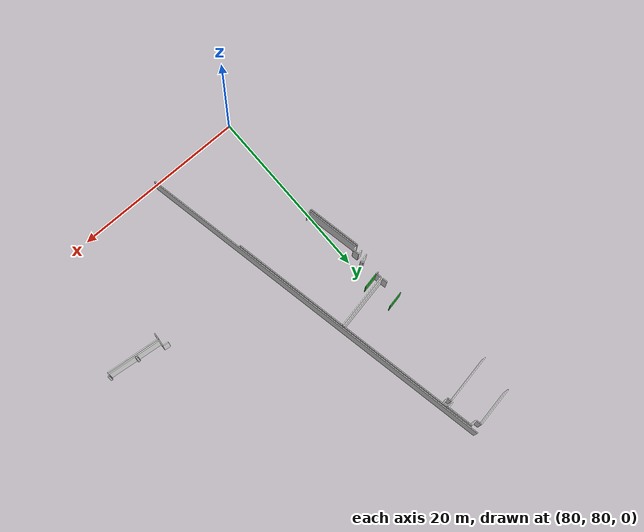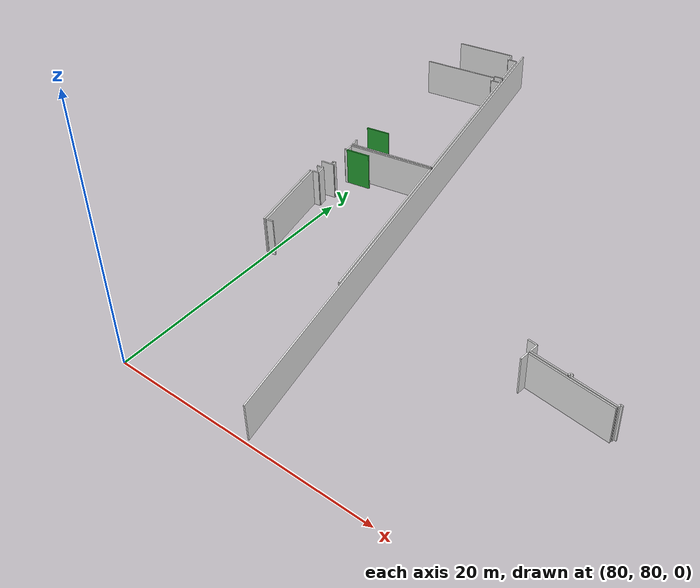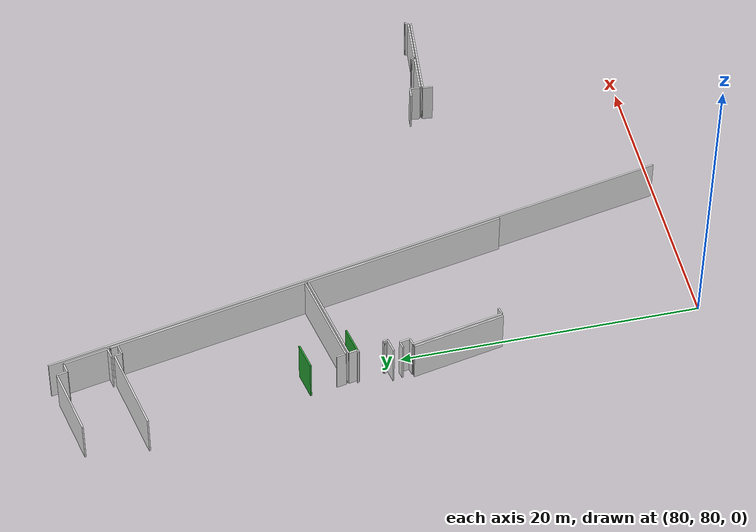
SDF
<sdf version="1.6">
 <world name="default">
  <model name="wall_79.3_106.4_1.5">
   <static>true</static>
   <pose>79.26000000012573 106.44999999995343 1.5 0 0 0.20176234422216807</pose>
   <link name="link">
    <visual name="visual">
     <geometry><box><size>1.796440926041953 0.1 3</size></box></geometry>
     <material>
      <script><uri>file://media/materials/scripts/gazebo.material</uri><name>Gazebo/Green</name></script>
     </material>
    </visual>
    <collision name="collision"><geometry><box><size>1.796440926041953 0.1 3</size></box></geometry></collision>
   </link>
  </model>
  <model name="wall_79.9_103.3_1.5">
   <static>true</static>
   <pose>79.88999999989755 103.26499999989755 1.5 0 0 0.19630266418534112</pose>
   <link name="link">
    <visual name="visual">
     <geometry><box><size>1.7944637079858738 0.1 3</size></box></geometry>
     <material>
      <script><uri>file://media/materials/scripts/gazebo.material</uri><name>Gazebo/Green</name></script>
     </material>
    </visual>
    <collision name="collision"><geometry><box><size>1.7944637079858738 0.1 3</size></box></geometry></collision>
   </link>
  </model>
  <model name="wall_104.1_93.3_1.5">
   <static>true</static>
   <pose>104.05999999999767 93.28500000014901 1.5 0 0 3.041608692913362</pose>
   <link name="link">
    <visual name="visual">
     <geometry><box><size>6.311521211261997 0.1 3</size></box></geometry>
     <material>
      <script><uri>file://media/materials/scripts/gazebo.material</uri><name>Gazebo/White</name></script>
     </material>
    </visual>
    <collision name="collision"><geometry><box><size>6.311521211261997 0.1 3</size></box></geometry></collision>
   </link>
  </model>
  <model name="wall_100.9_93.3_1.5">
   <static>true</static>
   <pose>100.88499999998021 93.25500000012107 1.5 0 0 -1.6718996985493473</pose>
   <link name="link">
    <visual name="visual">
     <geometry><box><size>0.693541635321099 0.1 3</size></box></geometry>
     <material>
      <script><uri>file://media/materials/scripts/gazebo.material</uri><name>Gazebo/White</name></script>
     </material>
    </visual>
    <collision name="collision"><geometry><box><size>0.693541635321099 0.1 3</size></box></geometry></collision>
   </link>
  </model>
  <model name="wall_78.8_104.2_1.5">
   <static>true</static>
   <pose>78.79999999998836 104.19499999983236 1.5 0 0 -1.382574821464652</pose>
   <link name="link">
    <visual name="visual">
     <geometry><box><size>0.6413267496823023 0.1 3</size></box></geometry>
     <material>
      <script><uri>file://media/materials/scripts/gazebo.material</uri><name>Gazebo/White</name></script>
     </material>
    </visual>
    <collision name="collision"><geometry><box><size>0.6413267496823023 0.1 3</size></box></geometry></collision>
   </link>
  </model>
  <model name="wall_82.1_104.5_1.5">
   <static>true</static>
   <pose>82.07499999998254 104.51499999989755 1.5 0 0 0.1950017882431763</pose>
   <link name="link">
    <visual name="visual">
     <geometry><box><size>6.554220014613294 0.1 3</size></box></geometry>
     <material>
      <script><uri>file://media/materials/scripts/gazebo.material</uri><name>Gazebo/White</name></script>
     </material>
    </visual>
    <collision name="collision"><geometry><box><size>6.554220014613294 0.1 3</size></box></geometry></collision>
   </link>
  </model>
  <model name="wall_84.0_111.8_1.5">
   <static>true</static>
   <pose>83.97000000000116 111.76499999989755 1.5 0 0 1.7677557767697853</pose>
   <link name="link">
    <visual name="visual">
     <geometry><box><size>13.490830219051515 0.1 3</size></box></geometry>
     <material>
      <script><uri>file://media/materials/scripts/gazebo.material</uri><name>Gazebo/White</name></script>
     </material>
    </visual>
    <collision name="collision"><geometry><box><size>13.490830219051515 0.1 3</size></box></geometry></collision>
   </link>
  </model>
  <model name="wall_82.6_118.4_1.5">
   <static>true</static>
   <pose>82.625 118.375 1.5 0 0 -2.944197098217425</pose>
   <link name="link">
    <visual name="visual">
     <geometry><box><size>0.050990195137754324 0.1 3</size></box></geometry>
     <material>
      <script><uri>file://media/materials/scripts/gazebo.material</uri><name>Gazebo/White</name></script>
     </material>
    </visual>
    <collision name="collision">
     <geometry><box><size>0.050990195137754324 0.1 3</size></box></geometry>
    </collision>
   </link>
  </model>
  <model name="wall_82.6_118.1_1.5">
   <static>true</static>
   <pose>82.64999999999418 118.13000000012107 1.5 0 0 -1.3654009375276481</pose>
   <link name="link">
    <visual name="visual">
     <geometry><box><size>0.4903060268741386 0.1 3</size></box></geometry>
     <material>
      <script><uri>file://media/materials/scripts/gazebo.material</uri><name>Gazebo/White</name></script>
     </material>
    </visual>
    <collision name="collision"><geometry><box><size>0.4903060268741386 0.1 3</size></box></geometry></collision>
   </link>
  </model>
  <model name="wall_82.4_117.8_1.5">
   <static>true</static>
   <pose>82.35500000001048 117.82499999995343 1.5 0 0 -2.9553698126839456</pose>
   <link name="link">
    <visual name="visual">
     <geometry><box><size>0.7021395873294909 0.1 3</size></box></geometry>
     <material>
      <script><uri>file://media/materials/scripts/gazebo.material</uri><name>Gazebo/White</name></script>
     </material>
    </visual>
    <collision name="collision"><geometry><box><size>0.7021395873294909 0.1 3</size></box></geometry></collision>
   </link>
  </model>
  <model name="wall_82.0_118.0_1.5">
   <static>true</static>
   <pose>81.95999999999185 118.0 1.5 0 0 1.7761917158684424</pose>
   <link name="link">
    <visual name="visual">
     <geometry><box><size>0.4903060273300119 0.1 3</size></box></geometry>
     <material>
      <script><uri>file://media/materials/scripts/gazebo.material</uri><name>Gazebo/White</name></script>
     </material>
    </visual>
    <collision name="collision"><geometry><box><size>0.4903060273300119 0.1 3</size></box></geometry></collision>
   </link>
  </model>
  <model name="wall_79.1_117.7_1.5">
   <static>true</static>
   <pose>79.06499999997322 117.68000000016764 1.5 0 0 -2.947240709618677</pose>
   <link name="link">
    <visual name="visual">
     <geometry><box><size>5.799180976679107 0.1 3</size></box></geometry>
     <material>
      <script><uri>file://media/materials/scripts/gazebo.material</uri><name>Gazebo/White</name></script>
     </material>
    </visual>
    <collision name="collision"><geometry><box><size>5.799180976679107 0.1 3</size></box></geometry></collision>
   </link>
  </model>
  <model name="wall_79.4_101.2_1.5">
   <static>true</static>
   <pose>79.38999999998487 101.18500000005588 1.5 0 0 -1.3667783472355337</pose>
   <link name="link">
    <visual name="visual">
     <geometry><box><size>0.2961418579352255 0.1 3</size></box></geometry>
     <material>
      <script><uri>file://media/materials/scripts/gazebo.material</uri><name>Gazebo/White</name></script>
     </material>
    </visual>
    <collision name="collision"><geometry><box><size>0.2961418579352255 0.1 3</size></box></geometry></collision>
   </link>
  </model>
  <model name="wall_78.9_100.9_1.5">
   <static>true</static>
   <pose>78.92999999999302 100.94500000006519 1.5 0 0 -2.950090935171577</pose>
   <link name="link">
    <visual name="visual">
     <geometry><box><size>0.9982484660355146 0.1 3</size></box></geometry>
     <material>
      <script><uri>file://media/materials/scripts/gazebo.material</uri><name>Gazebo/White</name></script>
     </material>
    </visual>
    <collision name="collision"><geometry><box><size>0.9982484660355146 0.1 3</size></box></geometry></collision>
   </link>
  </model>
  <model name="wall_78.8_100.3_1.5">
   <static>true</static>
   <pose>78.81500000000233 100.26000000000931 1.5 0 0 0.2013171085608308</pose>
   <link name="link">
    <visual name="visual">
     <geometry><box><size>0.5000999900114971 0.1 3</size></box></geometry>
     <material>
      <script><uri>file://media/materials/scripts/gazebo.material</uri><name>Gazebo/White</name></script>
     </material>
    </visual>
    <collision name="collision"><geometry><box><size>0.5000999900114971 0.1 3</size></box></geometry></collision>
   </link>
  </model>
  <model name="wall_79.1_100.0_1.5">
   <static>true</static>
   <pose>79.125 99.96999999997206 1.5 0 0 -1.3818991459561358</pose>
   <link name="link">
    <visual name="visual">
     <geometry><box><size>0.6923149573923696 0.1 3</size></box></geometry>
     <material>
      <script><uri>file://media/materials/scripts/gazebo.material</uri><name>Gazebo/White</name></script>
     </material>
    </visual>
    <collision name="collision"><geometry><box><size>0.6923149573923696 0.1 3</size></box></geometry></collision>
   </link>
  </model>
  <model name="wall_78.9_99.6_1.5">
   <static>true</static>
   <pose>78.94500000000698 99.57999999984168 1.5 0 0 -2.9402755450289626</pose>
   <link name="link">
    <visual name="visual">
     <geometry><box><size>0.5000999900114971 0.1 3</size></box></geometry>
     <material>
      <script><uri>file://media/materials/scripts/gazebo.material</uri><name>Gazebo/White</name></script>
     </material>
    </visual>
    <collision name="collision"><geometry><box><size>0.5000999900114971 0.1 3</size></box></geometry></collision>
   </link>
  </model>
  <model name="wall_79.3_96.4_1.5">
   <static>true</static>
   <pose>79.31500000000233 96.44999999995343 1.5 0 0 -1.37371297423356</pose>
   <link name="link">
    <visual name="visual">
     <geometry><box><size>6.281600114306311 0.1 3</size></box></geometry>
     <material>
      <script><uri>file://media/materials/scripts/gazebo.material</uri><name>Gazebo/White</name></script>
     </material>
    </visual>
    <collision name="collision"><geometry><box><size>6.281600114306311 0.1 3</size></box></geometry></collision>
   </link>
  </model>
  <model name="wall_80.2_93.4_1.5">
   <static>true</static>
   <pose>80.17499999998836 93.42000000015832 1.5 0 0 0.2013171085608308</pose>
   <link name="link">
    <visual name="visual">
     <geometry><box><size>0.5000999900114971 0.1 3</size></box></geometry>
     <material>
      <script><uri>file://media/materials/scripts/gazebo.material</uri><name>Gazebo/White</name></script>
     </material>
    </visual>
    <collision name="collision"><geometry><box><size>0.5000999900114971 0.1 3</size></box></geometry></collision>
   </link>
  </model>
  <model name="wall_86.7_98.2_1.5">
   <static>true</static>
   <pose>86.67500000001746 98.21000000019558 1.5 0 0 1.7677638655556385</pose>
   <link name="link">
    <visual name="visual">
     <geometry><box><size>13.745781170945156 0.1 3</size></box></geometry>
     <material>
      <script><uri>file://media/materials/scripts/gazebo.material</uri><name>Gazebo/White</name></script>
     </material>
    </visual>
    <collision name="collision"><geometry><box><size>13.745781170945156 0.1 3</size></box></geometry></collision>
   </link>
  </model>
  <model name="wall_82.1_104.3_1.5">
   <static>true</static>
   <pose>82.11000000001513 104.31500000017695 1.5 0 0 -2.9468860624579416</pose>
   <link name="link">
    <visual name="visual">
     <geometry><box><size>6.564030773852092 0.1 3</size></box></geometry>
     <material>
      <script><uri>file://media/materials/scripts/gazebo.material</uri><name>Gazebo/White</name></script>
     </material>
    </visual>
    <collision name="collision"><geometry><box><size>6.564030773852092 0.1 3</size></box></geometry></collision>
   </link>
  </model>
  <model name="wall_79.0_103.4_1.5">
   <static>true</static>
   <pose>78.95000000001164 103.38500000000931 1.5 0 0 -1.370143449587411</pose>
   <link name="link">
    <visual name="visual">
     <geometry><box><size>0.6020797292489833 0.1 3</size></box></geometry>
     <material>
      <script><uri>file://media/materials/scripts/gazebo.material</uri><name>Gazebo/White</name></script>
     </material>
    </visual>
    <collision name="collision"><geometry><box><size>0.6020797292489833 0.1 3</size></box></geometry></collision>
   </link>
  </model>
  <model name="wall_78.9_121.6_1.5">
   <static>true</static>
   <pose>78.89000000001397 121.61499999999069 1.5 0 0 0.19441557721220537</pose>
   <link name="link">
    <visual name="visual">
     <geometry><box><size>4.606788469248449 0.1 3</size></box></geometry>
     <material>
      <script><uri>file://media/materials/scripts/gazebo.material</uri><name>Gazebo/White</name></script>
     </material>
    </visual>
    <collision name="collision"><geometry><box><size>4.606788469248449 0.1 3</size></box></geometry></collision>
   </link>
  </model>
  <model name="wall_81.2_121.7_1.5">
   <static>true</static>
   <pose>81.22000000000116 121.71999999997206 1.5 0 0 -1.3677511096525332</pose>
   <link name="link">
    <visual name="visual">
     <geometry><box><size>0.6942621984636649 0.1 3</size></box></geometry>
     <material>
      <script><uri>file://media/materials/scripts/gazebo.material</uri><name>Gazebo/White</name></script>
     </material>
    </visual>
    <collision name="collision"><geometry><box><size>0.6942621984636649 0.1 3</size></box></geometry></collision>
   </link>
  </model>
  <model name="wall_81.6_121.4_1.5">
   <static>true</static>
   <pose>81.62999999997555 121.44499999983236 1.5 0 0 0.18889718072096112</pose>
   <link name="link">
    <visual name="visual">
     <geometry><box><size>0.6923149571989928 0.1 3</size></box></geometry>
     <material>
      <script><uri>file://media/materials/scripts/gazebo.material</uri><name>Gazebo/White</name></script>
     </material>
    </visual>
    <collision name="collision"><geometry><box><size>0.6923149571989928 0.1 3</size></box></geometry></collision>
   </link>
  </model>
  <model name="wall_82.3_120.0_1.5">
   <static>true</static>
   <pose>82.26499999998487 120.0449999999255 1.5 0 0 -1.3720884317123052</pose>
   <link name="link">
    <visual name="visual">
     <geometry><box><size>2.9888124729202743 0.1 3</size></box></geometry>
     <material>
      <script><uri>file://media/materials/scripts/gazebo.material</uri><name>Gazebo/White</name></script>
     </material>
    </visual>
    <collision name="collision"><geometry><box><size>2.9888124729202743 0.1 3</size></box></geometry></collision>
   </link>
  </model>
  <model name="wall_82.2_118.5_1.5">
   <static>true</static>
   <pose>82.21499999999651 118.51000000000931 1.5 0 0 -2.9414115854430696</pose>
   <link name="link">
    <visual name="visual">
     <geometry><box><size>0.7040596565914858 0.1 3</size></box></geometry>
     <material>
      <script><uri>file://media/materials/scripts/gazebo.material</uri><name>Gazebo/White</name></script>
     </material>
    </visual>
    <collision name="collision"><geometry><box><size>0.7040596565914858 0.1 3</size></box></geometry></collision>
   </link>
  </model>
  <model name="wall_78.8_103.1_1.5">
   <static>true</static>
   <pose>78.80999999999767 103.0999999998603 1.5 0 0 -1.373400766945016</pose>
   <link name="link">
    <visual name="visual">
     <geometry><box><size>0.10198039036683233 0.1 3</size></box></geometry>
     <material>
      <script><uri>file://media/materials/scripts/gazebo.material</uri><name>Gazebo/White</name></script>
     </material>
    </visual>
    <collision name="collision"><geometry><box><size>0.10198039036683233 0.1 3</size></box></geometry></collision>
   </link>
  </model>
  <model name="wall_78.9_103.1_1.5">
   <static>true</static>
   <pose>78.91500000000815 103.06999999983236 1.5 0 0 0.20749622662047904</pose>
   <link name="link">
    <visual name="visual">
     <geometry><box><size>0.19416487839942884 0.1 3</size></box></geometry>
     <material>
      <script><uri>file://media/materials/scripts/gazebo.material</uri><name>Gazebo/White</name></script>
     </material>
    </visual>
    <collision name="collision"><geometry><box><size>0.19416487839942884 0.1 3</size></box></geometry></collision>
   </link>
  </model>
  <model name="wall_79.3_101.3_1.5">
   <static>true</static>
   <pose>79.26499999998487 101.31000000005588 1.5 0 0 -2.9340964269693144</pose>
   <link name="link">
    <visual name="visual">
     <geometry><box><size>0.19416487839942884 0.1 3</size></box></geometry>
     <material>
      <script><uri>file://media/materials/scripts/gazebo.material</uri><name>Gazebo/White</name></script>
     </material>
    </visual>
    <collision name="collision"><geometry><box><size>0.19416487839942884 0.1 3</size></box></geometry></collision>
   </link>
  </model>
  <model name="wall_79.2_101.2_1.5">
   <static>true</static>
   <pose>79.17999999999302 101.24500000011176 1.5 0 0 -1.3521273803731177</pose>
   <link name="link">
    <visual name="visual">
     <geometry><box><size>0.0921954444315063 0.1 3</size></box></geometry>
     <material>
      <script><uri>file://media/materials/scripts/gazebo.material</uri><name>Gazebo/White</name></script>
     </material>
    </visual>
    <collision name="collision"><geometry><box><size>0.0921954444315063 0.1 3</size></box></geometry></collision>
   </link>
  </model>
  <model name="wall_79.1_96.4_1.5">
   <static>true</static>
   <pose>79.11999999999534 96.41000000014901 1.5 0 0 -1.3721523281490677</pose>
   <link name="link">
    <visual name="visual">
     <geometry><box><size>6.283565866752152 0.1 3</size></box></geometry>
     <material>
      <script><uri>file://media/materials/scripts/gazebo.material</uri><name>Gazebo/White</name></script>
     </material>
    </visual>
    <collision name="collision"><geometry><box><size>6.283565866752152 0.1 3</size></box></geometry></collision>
   </link>
  </model>
  <model name="wall_107.3_93.3_1.5">
   <static>true</static>
   <pose>107.34500000000116 93.33499999996275 1.5 0 0 2.9849907752705747</pose>
   <link name="link">
    <visual name="visual">
     <geometry><box><size>0.19235384065968367 0.1 3</size></box></geometry>
     <material>
      <script><uri>file://media/materials/scripts/gazebo.material</uri><name>Gazebo/White</name></script>
     </material>
    </visual>
    <collision name="collision"><geometry><box><size>0.19235384065968367 0.1 3</size></box></geometry></collision>
   </link>
  </model>
  <model name="wall_107.2_93.2_1.5">
   <static>true</static>
   <pose>107.23499999998603 93.24500000011176 1.5 0 0 -1.712693381554281</pose>
   <link name="link">
    <visual name="visual">
     <geometry><box><size>0.21213203432303704 0.1 3</size></box></geometry>
     <material>
      <script><uri>file://media/materials/scripts/gazebo.material</uri><name>Gazebo/White</name></script>
     </material>
    </visual>
    <collision name="collision"><geometry><box><size>0.21213203432303704 0.1 3</size></box></geometry></collision>
   </link>
  </model>
  <model name="wall_105.6_93.3_1.5">
   <static>true</static>
   <pose>105.57499999998254 93.31000000005588 1.5 0 0 3.038614747278259</pose>
   <link name="link">
    <visual name="visual">
     <geometry><box><size>3.307521730807039 0.1 3</size></box></geometry>
     <material>
      <script><uri>file://media/materials/scripts/gazebo.material</uri><name>Gazebo/White</name></script>
     </material>
    </visual>
    <collision name="collision"><geometry><box><size>3.307521730807039 0.1 3</size></box></geometry></collision>
   </link>
  </model>
  <model name="wall_103.9_93.6_1.5">
   <static>true</static>
   <pose>103.94500000000698 93.5800000000745 1.5 0 0 1.4219063791853994</pose>
   <link name="link">
    <visual name="visual">
     <geometry><box><size>0.20223748434991518 0.1 3</size></box></geometry>
     <material>
      <script><uri>file://media/materials/scripts/gazebo.material</uri><name>Gazebo/White</name></script>
     </material>
    </visual>
    <collision name="collision"><geometry><box><size>0.20223748434991518 0.1 3</size></box></geometry></collision>
   </link>
  </model>
  <model name="wall_103.9_93.7_1.5">
   <static>true</static>
   <pose>103.86000000001513 93.69000000017695 1.5 0 0 3.0419240010121844</pose>
   <link name="link">
    <visual name="visual">
     <geometry><box><size>0.20099751243585498 0.1 3</size></box></geometry>
     <material>
      <script><uri>file://media/materials/scripts/gazebo.material</uri><name>Gazebo/White</name></script>
     </material>
    </visual>
    <collision name="collision"><geometry><box><size>0.20099751243585498 0.1 3</size></box></geometry></collision>
   </link>
  </model>
  <model name="wall_103.8_93.6_1.5">
   <static>true</static>
   <pose>103.75 93.60000000009313 1.5 0 0 -1.6704649792860586</pose>
   <link name="link">
    <visual name="visual">
     <geometry><box><size>0.20099751260961132 0.1 3</size></box></geometry>
     <material>
      <script><uri>file://media/materials/scripts/gazebo.material</uri><name>Gazebo/White</name></script>
     </material>
    </visual>
    <collision name="collision"><geometry><box><size>0.20099751260961132 0.1 3</size></box></geometry></collision>
   </link>
  </model>
  <model name="wall_102.3_93.6_1.5">
   <static>true</static>
   <pose>102.34500000000116 93.63999999989755 1.5 0 0 3.041569139581511</pose>
   <link name="link">
    <visual name="visual">
     <geometry><box><size>2.804014978520681 0.1 3</size></box></geometry>
     <material>
      <script><uri>file://media/materials/scripts/gazebo.material</uri><name>Gazebo/White</name></script>
     </material>
    </visual>
    <collision name="collision"><geometry><box><size>2.804014978520681 0.1 3</size></box></geometry></collision>
   </link>
  </model>
  <model name="wall_101.0_94.1_1.5">
   <static>true</static>
   <pose>100.98500000001513 94.125 1.5 0 0 1.4696929551082138</pose>
   <link name="link">
    <visual name="visual">
     <geometry><box><size>0.6935416357843824 0.1 3</size></box></geometry>
     <material>
      <script><uri>file://media/materials/scripts/gazebo.material</uri><name>Gazebo/White</name></script>
     </material>
    </visual>
    <collision name="collision"><geometry><box><size>0.6935416357843824 0.1 3</size></box></geometry></collision>
   </link>
  </model>
  <model name="wall_100.7_94.5_1.5">
   <static>true</static>
   <pose>100.6700000000128 94.51000000000931 1.5 0 0 3.0278006469995504</pose>
   <link name="link">
    <visual name="visual">
     <geometry><box><size>0.7045565981194933 0.1 3</size></box></geometry>
     <material>
      <script><uri>file://media/materials/scripts/gazebo.material</uri><name>Gazebo/White</name></script>
     </material>
    </visual>
    <collision name="collision"><geometry><box><size>0.7045565981194933 0.1 3</size></box></geometry></collision>
   </link>
  </model>
  <model name="wall_86.2_101.4_1.5">
   <static>true</static>
   <pose>86.25 101.36499999999069 1.5 0 0 1.767599820403571</pose>
   <link name="link">
    <visual name="visual">
     <geometry><box><size>43.061227339674524 0.1 3</size></box></geometry>
     <material>
      <script><uri>file://media/materials/scripts/gazebo.material</uri><name>Gazebo/White</name></script>
     </material>
    </visual>
    <collision name="collision"><geometry><box><size>43.061227339674524 0.1 3</size></box></geometry></collision>
   </link>
  </model>
 </world>
</sdf>
